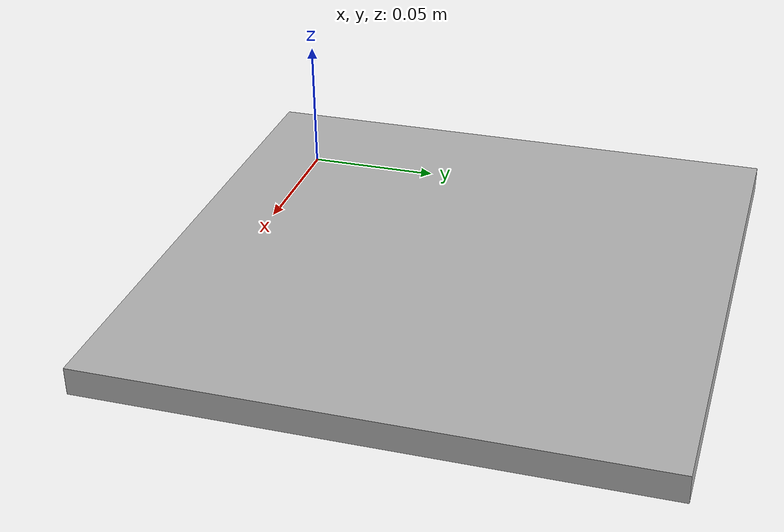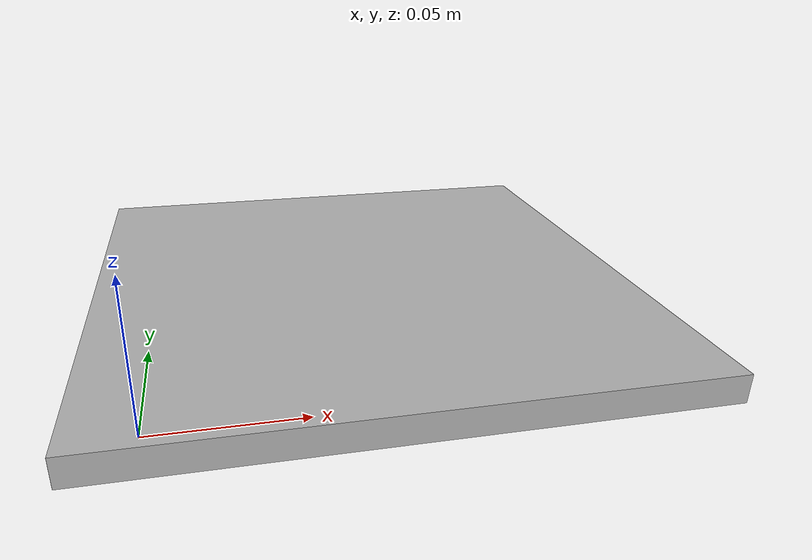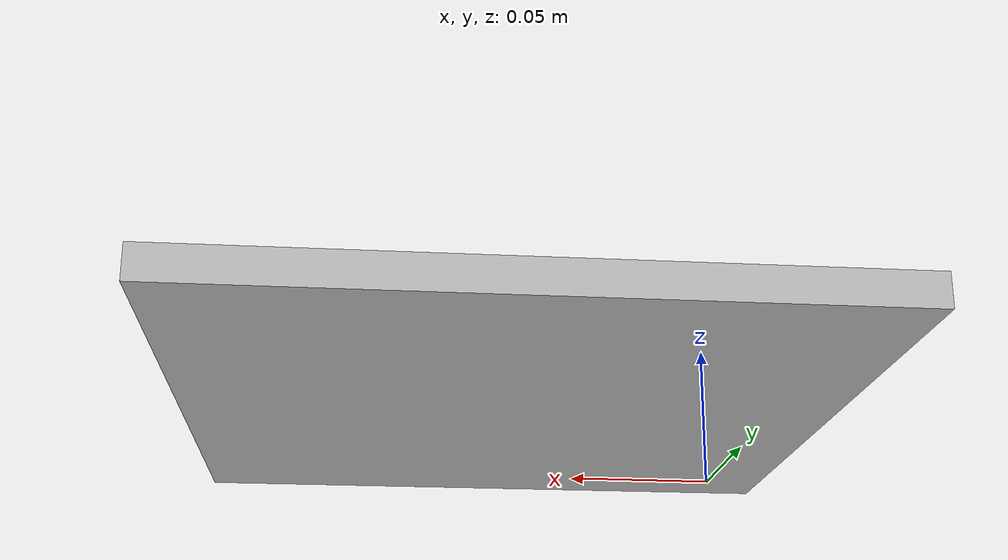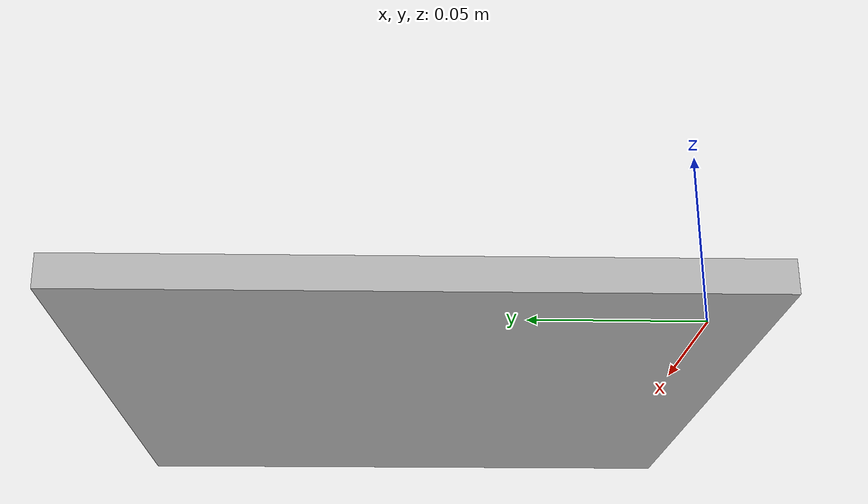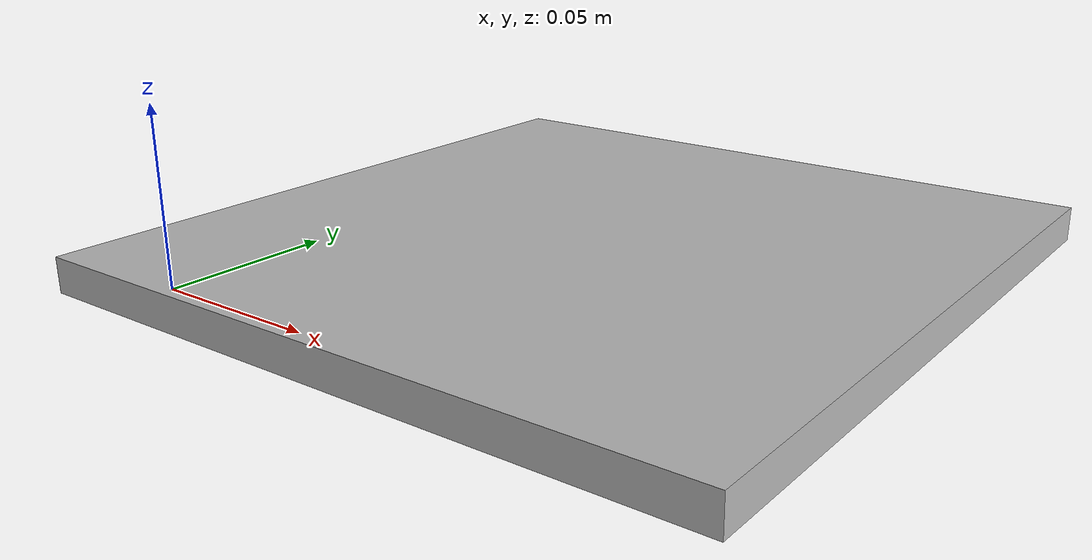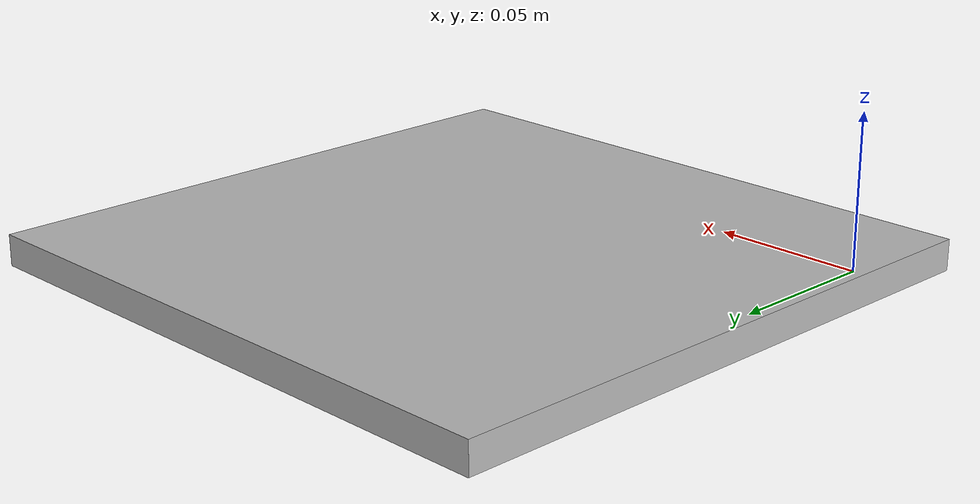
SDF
<?xml version="1.0"?>
<sdf version="1.4">
  <model name="charuco_200x200_4x4">
    <static>1</static>
    <link name="charuco">
      <pose>0 0 0 0 0 0</pose>
      <visual name="charuco_200x200_4x4_visual">
        <geometry>
          <mesh>
            <uri>model://charuco_200x200_4x4/charuco_200x200_4x4.dae</uri>
          </mesh>
        </geometry>
      </visual>
      <collision name="charuco_200x200_4x4_collision">
        <geometry>
          <mesh>
            <uri>model://charuco_200x200_4x4/charuco_200x200_4x4.dae</uri>
          </mesh>
        </geometry>
      </collision>
    </link>
  </model>
</sdf>
